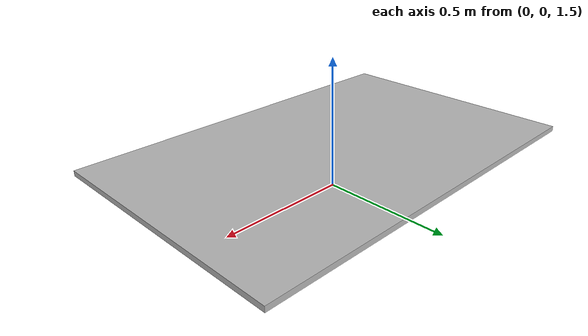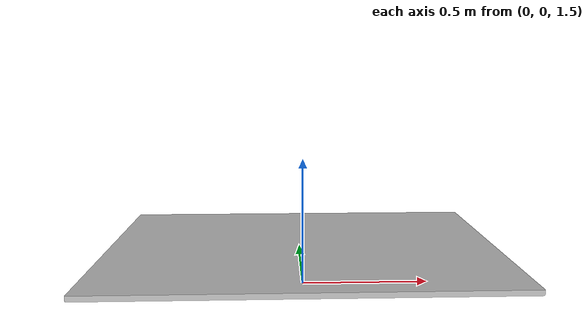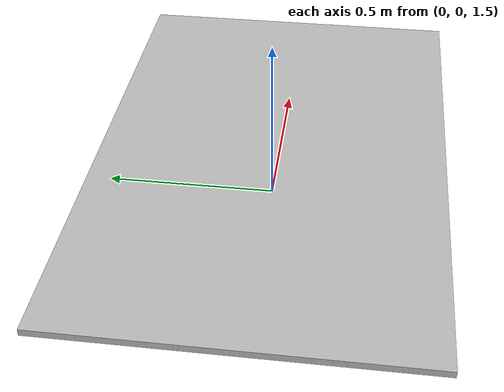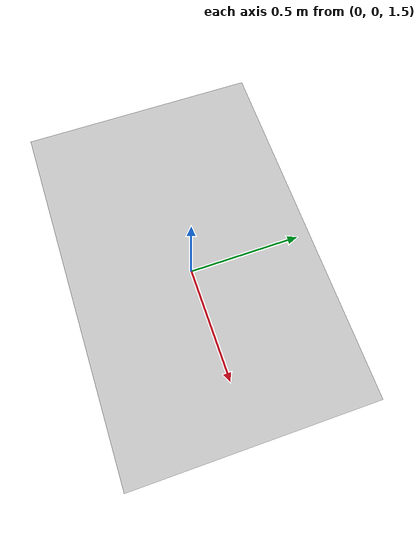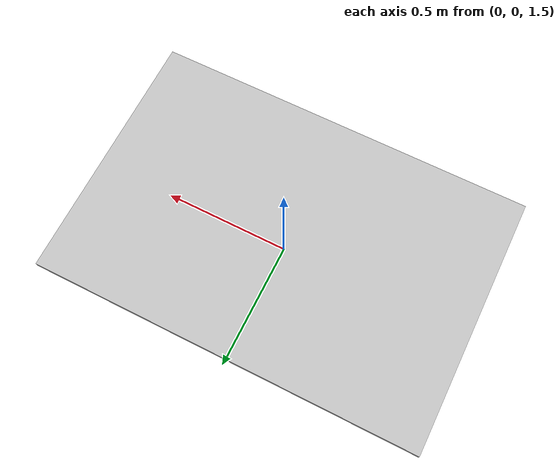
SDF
<?xml version="1.0" ?>
<sdf version="1.7">
  <!-- One can change this world to his needs or use another one. -->

  <world name="summer_school_demo">

	<model name="TableRoof">
			<pose> 0.0 0.0 1.65 0.0 0.0 0.0</pose>
			<static>true</static>
			<link name='linkTableRoof'>
				<pose>0 0 0 0 0 0</pose>

				<collision name="my_collisionTableRoof">
		 			<pose>0 0 0 0 0 0</pose>
					<geometry>
		        <box>
		          <size>1.5 1.0 0.02</size>
		        </box>
		      </geometry>
	      </collision>

				<visual name="my_visualTableRoof">
					<geometry>
		        <box>
					<size>1.5 1.0 0.02</size>
		        </box>
		      </geometry>
	      </visual>

				<self_collide>0</self_collide>
				<gravity>1</gravity>
		   </link>
    </model>

</world>
</sdf>
